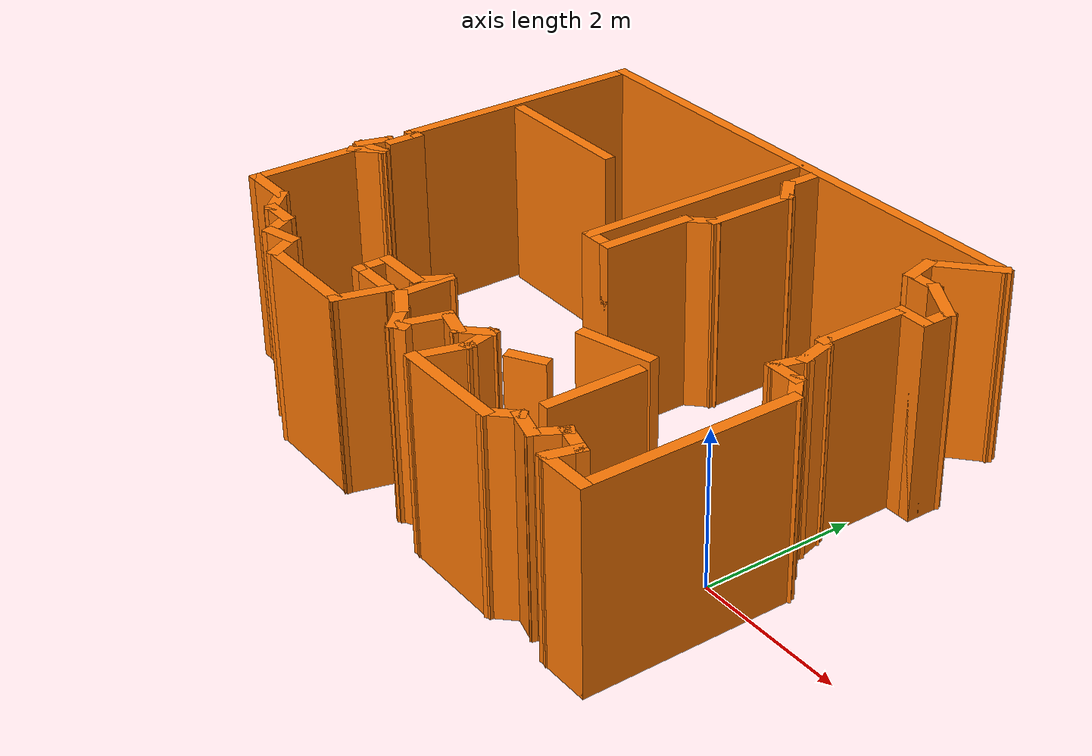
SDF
<?xml version='1.0'?>
<sdf version='1.6'>
  <model name='map_13'>
    <pose frame=''>-3.28804 1.04279 0 0 -0 0</pose>
    <link name='Wall_0'>
      <collision name='Wall_0_Collision'>
        <geometry>
          <box>
            <size>7.25 0.15 2.5</size>
          </box>
        </geometry>
        <pose frame=''>0 0 1.25 0 -0 0</pose>
      </collision>
      <visual name='Wall_0_Visual'>
        <pose frame=''>0 0 1.25 0 -0 0</pose>
        <geometry>
          <box>
            <size>7.25 0.15 2.5</size>
          </box>
        </geometry>
        <material>
          <script>
            <uri>file://media/materials/scripts/gazebo.material</uri>
            <name>Gazebo/Grey</name>
          </script>
          <ambient>0.996078 0.47451 0.0196078 1</ambient>
        </material>
        <meta>
          <layer>0</layer>
        </meta>
      </visual>
      <pose frame=''>-0.287135 3.15231 0 0 -0 3.14159</pose>
    </link>
    <link name='Wall_10'>
      <collision name='Wall_10_Collision'>
        <geometry>
          <box>
            <size>0.5 0.15 2.5</size>
          </box>
        </geometry>
        <pose frame=''>0 0 1.25 0 -0 0</pose>
      </collision>
      <visual name='Wall_10_Visual'>
        <pose frame=''>0 0 1.25 0 -0 0</pose>
        <geometry>
          <box>
            <size>0.5 0.15 2.5</size>
          </box>
        </geometry>
        <material>
          <script>
            <uri>file://media/materials/scripts/gazebo.material</uri>
            <name>Gazebo/Grey</name>
          </script>
          <ambient>0.996078 0.47451 0.0196078 1</ambient>
        </material>
        <meta>
          <layer>0</layer>
        </meta>
      </visual>
      <pose frame=''>-3.71339 -0.918919 0 0 -0 -2.35619</pose>
    </link>
    <link name='Wall_11'>
      <collision name='Wall_11_Collision'>
        <geometry>
          <box>
            <size>1.5 0.15 2.5</size>
          </box>
        </geometry>
        <pose frame=''>0 0 1.25 0 -0 0</pose>
      </collision>
      <visual name='Wall_11_Visual'>
        <pose frame=''>0 0 1.25 0 -0 0</pose>
        <geometry>
          <box>
            <size>1.5 0.15 2.5</size>
          </box>
        </geometry>
        <material>
          <script>
            <uri>file://media/materials/scripts/gazebo.material</uri>
            <name>Gazebo/Grey</name>
          </script>
          <ambient>0.996078 0.47451 0.0196078 1</ambient>
        </material>
        <meta>
          <layer>0</layer>
        </meta>
      </visual>
      <pose frame=''>-3.83713 -1.71766 0 0 -0 -1.5708</pose>
    </link>
    <link name='Wall_12'>
      <collision name='Wall_12_Collision'>
        <geometry>
          <box>
            <size>0.75 0.15 2.5</size>
          </box>
        </geometry>
        <pose frame=''>0 0 1.25 0 -0 0</pose>
      </collision>
      <visual name='Wall_12_Visual'>
        <pose frame=''>0 0 1.25 0 -0 0</pose>
        <geometry>
          <box>
            <size>0.75 0.15 2.5</size>
          </box>
        </geometry>
        <material>
          <script>
            <uri>file://media/materials/scripts/gazebo.material</uri>
            <name>Gazebo/Grey</name>
          </script>
          <ambient>0.996078 0.47451 0.0196078 1</ambient>
        </material>
        <meta>
          <layer>0</layer>
        </meta>
      </visual>
      <pose frame=''>-3.53714 -2.39266 0 0 -0 0</pose>
    </link>
    <link name='Wall_13'>
      <collision name='Wall_13_Collision'>
        <geometry>
          <box>
            <size>0.5 0.15 2.5</size>
          </box>
        </geometry>
        <pose frame=''>0 0 1.25 0 -0 0</pose>
      </collision>
      <visual name='Wall_13_Visual'>
        <pose frame=''>0 0 1.25 0 -0 0</pose>
        <geometry>
          <box>
            <size>0.5 0.15 2.5</size>
          </box>
        </geometry>
        <material>
          <script>
            <uri>file://media/materials/scripts/gazebo.material</uri>
            <name>Gazebo/Grey</name>
          </script>
          <ambient>0.996078 0.47451 0.0196078 1</ambient>
        </material>
        <meta>
          <layer>0</layer>
        </meta>
      </visual>
      <pose frame=''>-3.11339 -2.51641 0 0 -0 -0.785398</pose>
    </link>
    <link name='Wall_14'>
      <collision name='Wall_14_Collision'>
        <geometry>
          <box>
            <size>0.5 0.15 2.5</size>
          </box>
        </geometry>
        <pose frame=''>0 0 1.25 0 -0 0</pose>
      </collision>
      <visual name='Wall_14_Visual'>
        <pose frame=''>0 0 1.25 0 -0 0</pose>
        <geometry>
          <box>
            <size>0.5 0.15 2.5</size>
          </box>
        </geometry>
        <material>
          <script>
            <uri>file://media/materials/scripts/gazebo.material</uri>
            <name>Gazebo/Grey</name>
          </script>
          <ambient>0.996078 0.47451 0.0196078 1</ambient>
        </material>
        <meta>
          <layer>0</layer>
        </meta>
      </visual>
      <pose frame=''>-2.81465 -2.64015 0 0 -0 0</pose>
    </link>
    <link name='Wall_15'>
      <collision name='Wall_15_Collision'>
        <geometry>
          <box>
            <size>0.5 0.15 2.5</size>
          </box>
        </geometry>
        <pose frame=''>0 0 1.25 0 -0 0</pose>
      </collision>
      <visual name='Wall_15_Visual'>
        <pose frame=''>0 0 1.25 0 -0 0</pose>
        <geometry>
          <box>
            <size>0.5 0.15 2.5</size>
          </box>
        </geometry>
        <material>
          <script>
            <uri>file://media/materials/scripts/gazebo.material</uri>
            <name>Gazebo/Grey</name>
          </script>
          <ambient>0.996078 0.47451 0.0196078 1</ambient>
        </material>
        <meta>
          <layer>0</layer>
        </meta>
      </visual>
      <pose frame=''>-2.55215 -2.7917 0 0 -0 -1.0472</pose>
    </link>
    <link name='Wall_16'>
      <collision name='Wall_16_Collision'>
        <geometry>
          <box>
            <size>0.5 0.15 2.5</size>
          </box>
        </geometry>
        <pose frame=''>0 0 1.25 0 -0 0</pose>
      </collision>
      <visual name='Wall_16_Visual'>
        <pose frame=''>0 0 1.25 0 -0 0</pose>
        <geometry>
          <box>
            <size>0.5 0.15 2.5</size>
          </box>
        </geometry>
        <material>
          <script>
            <uri>file://media/materials/scripts/gazebo.material</uri>
            <name>Gazebo/Grey</name>
          </script>
          <ambient>0.996078 0.47451 0.0196078 1</ambient>
        </material>
        <meta>
          <layer>0</layer>
        </meta>
      </visual>
      <pose frame=''>-2.29561 -2.89797 0 0 -0 0.261799</pose>
    </link>
    <link name='Wall_19'>
      <collision name='Wall_19_Collision'>
        <geometry>
          <box>
            <size>0.5 0.15 2.5</size>
          </box>
        </geometry>
        <pose frame=''>0 0 1.25 0 -0 0</pose>
      </collision>
      <visual name='Wall_19_Visual'>
        <pose frame=''>0 0 1.25 0 -0 0</pose>
        <geometry>
          <box>
            <size>0.5 0.15 2.5</size>
          </box>
        </geometry>
        <material>
          <script>
            <uri>file://media/materials/scripts/gazebo.material</uri>
            <name>Gazebo/Grey</name>
          </script>
          <ambient>0.996078 0.47451 0.0196078 1</ambient>
        </material>
        <meta>
          <layer>0</layer>
        </meta>
      </visual>
      <pose frame=''>-2.03907 -3.00423 0 0 -0 -1.0472</pose>
    </link>
    <link name='Wall_20'>
      <collision name='Wall_20_Collision'>
        <geometry>
          <box>
            <size>1.5 0.15 2.5</size>
          </box>
        </geometry>
        <pose frame=''>0 0 1.25 0 -0 0</pose>
      </collision>
      <visual name='Wall_20_Visual'>
        <pose frame=''>0 0 1.25 0 -0 0</pose>
        <geometry>
          <box>
            <size>1.5 0.15 2.5</size>
          </box>
        </geometry>
        <material>
          <script>
            <uri>file://media/materials/scripts/gazebo.material</uri>
            <name>Gazebo/Grey</name>
          </script>
          <ambient>0.996078 0.47451 0.0196078 1</ambient>
        </material>
        <meta>
          <layer>0</layer>
        </meta>
      </visual>
      <pose frame=''>-1.27657 -3.15578 0 0 -0 0</pose>
    </link>
    <link name='Wall_21'>
      <collision name='Wall_21_Collision'>
        <geometry>
          <box>
            <size>0.75 0.15 2.5</size>
          </box>
        </geometry>
        <pose frame=''>0 0 1.25 0 -0 0</pose>
      </collision>
      <visual name='Wall_21_Visual'>
        <pose frame=''>0 0 1.25 0 -0 0</pose>
        <geometry>
          <box>
            <size>0.75 0.15 2.5</size>
          </box>
        </geometry>
        <material>
          <script>
            <uri>file://media/materials/scripts/gazebo.material</uri>
            <name>Gazebo/Grey</name>
          </script>
          <ambient>0.996078 0.47451 0.0196078 1</ambient>
        </material>
        <meta>
          <layer>0</layer>
        </meta>
      </visual>
      <pose frame=''>-0.523928 -2.866 0 0 -0 1.309</pose>
    </link>
    <link name='Wall_22'>
      <collision name='Wall_22_Collision'>
        <geometry>
          <box>
            <size>0.75 0.15 2.5</size>
          </box>
        </geometry>
        <pose frame=''>0 0 1.25 0 -0 0</pose>
      </collision>
      <visual name='Wall_22_Visual'>
        <pose frame=''>0 0 1.25 0 -0 0</pose>
        <geometry>
          <box>
            <size>0.75 0.15 2.5</size>
          </box>
        </geometry>
        <material>
          <script>
            <uri>file://media/materials/scripts/gazebo.material</uri>
            <name>Gazebo/Grey</name>
          </script>
          <ambient>0.996078 0.47451 0.0196078 1</ambient>
        </material>
        <meta>
          <layer>0</layer>
        </meta>
      </visual>
      <pose frame=''>-0.746282 -2.57623 0 0 -0 3.14159</pose>
    </link>
    <link name='Wall_23'>
      <collision name='Wall_23_Collision'>
        <geometry>
          <box>
            <size>0.5 0.15 2.5</size>
          </box>
        </geometry>
        <pose frame=''>0 0 1.25 0 -0 0</pose>
      </collision>
      <visual name='Wall_23_Visual'>
        <pose frame=''>0 0 1.25 0 -0 0</pose>
        <geometry>
          <box>
            <size>0.5 0.15 2.5</size>
          </box>
        </geometry>
        <material>
          <script>
            <uri>file://media/materials/scripts/gazebo.material</uri>
            <name>Gazebo/Grey</name>
          </script>
          <ambient>0.996078 0.47451 0.0196078 1</ambient>
        </material>
        <meta>
          <layer>0</layer>
        </meta>
      </visual>
      <pose frame=''>-1.04628 -2.40123 0 0 -0 1.5708</pose>
    </link>
    <link name='Wall_24'>
      <collision name='Wall_24_Collision'>
        <geometry>
          <box>
            <size>0.75 0.15 2.5</size>
          </box>
        </geometry>
        <pose frame=''>0 0 1.25 0 -0 0</pose>
      </collision>
      <visual name='Wall_24_Visual'>
        <pose frame=''>0 0 1.25 0 -0 0</pose>
        <geometry>
          <box>
            <size>0.75 0.15 2.5</size>
          </box>
        </geometry>
        <material>
          <script>
            <uri>file://media/materials/scripts/gazebo.material</uri>
            <name>Gazebo/Grey</name>
          </script>
          <ambient>0.996078 0.47451 0.0196078 1</ambient>
        </material>
        <meta>
          <layer>0</layer>
        </meta>
      </visual>
      <pose frame=''>-0.746282 -2.22623 0 0 -0 0</pose>
    </link>
    <link name='Wall_25'>
      <collision name='Wall_25_Collision'>
        <geometry>
          <box>
            <size>0.5 0.15 2.5</size>
          </box>
        </geometry>
        <pose frame=''>0 0 1.25 0 -0 0</pose>
      </collision>
      <visual name='Wall_25_Visual'>
        <pose frame=''>0 0 1.25 0 -0 0</pose>
        <geometry>
          <box>
            <size>0.5 0.15 2.5</size>
          </box>
        </geometry>
        <material>
          <script>
            <uri>file://media/materials/scripts/gazebo.material</uri>
            <name>Gazebo/Grey</name>
          </script>
          <ambient>0.996078 0.47451 0.0196078 1</ambient>
        </material>
        <meta>
          <layer>0</layer>
        </meta>
      </visual>
      <pose frame=''>-0.358782 -2.07467 0 0 -0 1.0472</pose>
    </link>
    <link name='Wall_26'>
      <collision name='Wall_26_Collision'>
        <geometry>
          <box>
            <size>0.75 0.15 2.5</size>
          </box>
        </geometry>
        <pose frame=''>0 0 1.25 0 -0 0</pose>
      </collision>
      <visual name='Wall_26_Visual'>
        <pose frame=''>0 0 1.25 0 -0 0</pose>
        <geometry>
          <box>
            <size>0.75 0.15 2.5</size>
          </box>
        </geometry>
        <material>
          <script>
            <uri>file://media/materials/scripts/gazebo.material</uri>
            <name>Gazebo/Grey</name>
          </script>
          <ambient>0.996078 0.47451 0.0196078 1</ambient>
        </material>
        <meta>
          <layer>0</layer>
        </meta>
      </visual>
      <pose frame=''>-0.271282 -2.22312 0 0 -0 -1.5708</pose>
    </link>
    <link name='Wall_27'>
      <collision name='Wall_27_Collision'>
        <geometry>
          <box>
            <size>0.5 0.15 2.5</size>
          </box>
        </geometry>
        <pose frame=''>0 0 1.25 0 -0 0</pose>
      </collision>
      <visual name='Wall_27_Visual'>
        <pose frame=''>0 0 1.25 0 -0 0</pose>
        <geometry>
          <box>
            <size>0.5 0.15 2.5</size>
          </box>
        </geometry>
        <material>
          <script>
            <uri>file://media/materials/scripts/gazebo.material</uri>
            <name>Gazebo/Grey</name>
          </script>
          <ambient>0.996078 0.47451 0.0196078 1</ambient>
        </material>
        <meta>
          <layer>0</layer>
        </meta>
      </visual>
      <pose frame=''>-0.119727 -2.61062 0 0 -0 -0.523599</pose>
    </link>
    <link name='Wall_28'>
      <collision name='Wall_28_Collision'>
        <geometry>
          <box>
            <size>0.5 0.15 2.5</size>
          </box>
        </geometry>
        <pose frame=''>0 0 1.25 0 -0 0</pose>
      </collision>
      <visual name='Wall_28_Visual'>
        <pose frame=''>0 0 1.25 0 -0 0</pose>
        <geometry>
          <box>
            <size>0.5 0.15 2.5</size>
          </box>
        </geometry>
        <material>
          <script>
            <uri>file://media/materials/scripts/gazebo.material</uri>
            <name>Gazebo/Grey</name>
          </script>
          <ambient>0.996078 0.47451 0.0196078 1</ambient>
        </material>
        <meta>
          <layer>0</layer>
        </meta>
      </visual>
      <pose frame=''>0.155571 -2.82186 0 0 -0 -0.785398</pose>
    </link>
    <link name='Wall_29'>
      <collision name='Wall_29_Collision'>
        <geometry>
          <box>
            <size>0.25 0.15 2.5</size>
          </box>
        </geometry>
        <pose frame=''>0 0 1.25 0 -0 0</pose>
      </collision>
      <visual name='Wall_29_Visual'>
        <pose frame=''>0 0 1.25 0 -0 0</pose>
        <geometry>
          <box>
            <size>0.25 0.15 2.5</size>
          </box>
        </geometry>
        <material>
          <script>
            <uri>file://media/materials/scripts/gazebo.material</uri>
            <name>Gazebo/Grey</name>
          </script>
          <ambient>0.996078 0.47451 0.0196078 1</ambient>
        </material>
        <meta>
          <layer>0</layer>
        </meta>
      </visual>
      <pose frame=''>0.322616 -2.9206 0 0 -0 0.523599</pose>
    </link>
    <link name='Wall_32'>
      <collision name='Wall_32_Collision'>
        <geometry>
          <box>
            <size>0.75 0.15 2.5</size>
          </box>
        </geometry>
        <pose frame=''>0 0 1.25 0 -0 0</pose>
      </collision>
      <visual name='Wall_32_Visual'>
        <pose frame=''>0 0 1.25 0 -0 0</pose>
        <geometry>
          <box>
            <size>0.75 0.15 2.5</size>
          </box>
        </geometry>
        <material>
          <script>
            <uri>file://media/materials/scripts/gazebo.material</uri>
            <name>Gazebo/Grey</name>
          </script>
          <ambient>0.996078 0.47451 0.0196078 1</ambient>
        </material>
        <meta>
          <layer>0</layer>
        </meta>
      </visual>
      <pose frame=''>0.35696 -2.65583 0 0 -0 1.309</pose>
    </link>
    <link name='Wall_35'>
      <collision name='Wall_35_Collision'>
        <geometry>
          <box>
            <size>0.5 0.15 2.5</size>
          </box>
        </geometry>
        <pose frame=''>0 0 1.25 0 -0 0</pose>
      </collision>
      <visual name='Wall_35_Visual'>
        <pose frame=''>0 0 1.25 0 -0 0</pose>
        <geometry>
          <box>
            <size>0.5 0.15 2.5</size>
          </box>
        </geometry>
        <material>
          <script>
            <uri>file://media/materials/scripts/gazebo.material</uri>
            <name>Gazebo/Grey</name>
          </script>
          <ambient>0.996078 0.47451 0.0196078 1</ambient>
        </material>
        <meta>
          <layer>0</layer>
        </meta>
      </visual>
      <pose frame=''>0.603643 -2.41134 0 0 -0 -0.261799</pose>
    </link>
    <link name='Wall_36'>
      <collision name='Wall_36_Collision'>
        <geometry>
          <box>
            <size>0.5 0.15 2.5</size>
          </box>
        </geometry>
        <pose frame=''>0 0 1.25 0 -0 0</pose>
      </collision>
      <visual name='Wall_36_Visual'>
        <pose frame=''>0 0 1.25 0 -0 0</pose>
        <geometry>
          <box>
            <size>0.5 0.15 2.5</size>
          </box>
        </geometry>
        <material>
          <script>
            <uri>file://media/materials/scripts/gazebo.material</uri>
            <name>Gazebo/Grey</name>
          </script>
          <ambient>0.996078 0.47451 0.0196078 1</ambient>
        </material>
        <meta>
          <layer>0</layer>
        </meta>
      </visual>
      <pose frame=''>0.896423 -2.33289 0 0 -0 0.785398</pose>
    </link>
    <link name='Wall_37'>
      <collision name='Wall_37_Collision'>
        <geometry>
          <box>
            <size>0.5 0.15 2.5</size>
          </box>
        </geometry>
        <pose frame=''>0 0 1.25 0 -0 0</pose>
      </collision>
      <visual name='Wall_37_Visual'>
        <pose frame=''>0 0 1.25 0 -0 0</pose>
        <geometry>
          <box>
            <size>0.5 0.15 2.5</size>
          </box>
        </geometry>
        <material>
          <script>
            <uri>file://media/materials/scripts/gazebo.material</uri>
            <name>Gazebo/Grey</name>
          </script>
          <ambient>0.996078 0.47451 0.0196078 1</ambient>
        </material>
        <meta>
          <layer>0</layer>
        </meta>
      </visual>
      <pose frame=''>1.06546 -2.37819 0 0 -0 -1.309</pose>
    </link>
    <link name='Wall_38'>
      <collision name='Wall_38_Collision'>
        <geometry>
          <box>
            <size>0.75 0.15 2.5</size>
          </box>
        </geometry>
        <pose frame=''>0 0 1.25 0 -0 0</pose>
      </collision>
      <visual name='Wall_38_Visual'>
        <pose frame=''>0 0 1.25 0 -0 0</pose>
        <geometry>
          <box>
            <size>0.75 0.15 2.5</size>
          </box>
        </geometry>
        <material>
          <script>
            <uri>file://media/materials/scripts/gazebo.material</uri>
            <name>Gazebo/Grey</name>
          </script>
          <ambient>0.996078 0.47451 0.0196078 1</ambient>
        </material>
        <meta>
          <layer>0</layer>
        </meta>
      </visual>
      <pose frame=''>1.03311 -2.837 0 0 -0 -1.8326</pose>
    </link>
    <link name='Wall_39'>
      <collision name='Wall_39_Collision'>
        <geometry>
          <box>
            <size>1.5 0.15 2.5</size>
          </box>
        </geometry>
        <pose frame=''>0 0 1.25 0 -0 0</pose>
      </collision>
      <visual name='Wall_39_Visual'>
        <pose frame=''>0 0 1.25 0 -0 0</pose>
        <geometry>
          <box>
            <size>1.5 0.15 2.5</size>
          </box>
        </geometry>
        <material>
          <script>
            <uri>file://media/materials/scripts/gazebo.material</uri>
            <name>Gazebo/Grey</name>
          </script>
          <ambient>0.996078 0.47451 0.0196078 1</ambient>
        </material>
        <meta>
          <layer>0</layer>
        </meta>
      </visual>
      <pose frame=''>1.63046 -3.12678 0 0 -0 0</pose>
    </link>
    <link name='Wall_4'>
      <collision name='Wall_4_Collision'>
        <geometry>
          <box>
            <size>3.5 0.15 2.5</size>
          </box>
        </geometry>
        <pose frame=''>0 0 1.25 0 -0 0</pose>
      </collision>
      <visual name='Wall_4_Visual'>
        <pose frame=''>0 0 1.25 0 -0 0</pose>
        <geometry>
          <box>
            <size>3.5 0.15 2.5</size>
          </box>
        </geometry>
        <material>
          <script>
            <uri>file://media/materials/scripts/gazebo.material</uri>
            <name>Gazebo/Grey</name>
          </script>
          <ambient>0.996078 0.47451 0.0196078 1</ambient>
        </material>
        <meta>
          <layer>0</layer>
        </meta>
      </visual>
      <pose frame=''>-3.83713 1.47731 0 0 -0 -1.5708</pose>
    </link>
    <link name='Wall_40'>
      <collision name='Wall_40_Collision'>
        <geometry>
          <box>
            <size>0.5 0.15 2.5</size>
          </box>
        </geometry>
        <pose frame=''>0 0 1.25 0 -0 0</pose>
      </collision>
      <visual name='Wall_40_Visual'>
        <pose frame=''>0 0 1.25 0 -0 0</pose>
        <geometry>
          <box>
            <size>0.5 0.15 2.5</size>
          </box>
        </geometry>
        <material>
          <script>
            <uri>file://media/materials/scripts/gazebo.material</uri>
            <name>Gazebo/Grey</name>
          </script>
          <ambient>0.996078 0.47451 0.0196078 1</ambient>
        </material>
        <meta>
          <layer>0</layer>
        </meta>
      </visual>
      <pose frame=''>2.42921 -3.00303 0 0 -0 0.785398</pose>
    </link>
    <link name='Wall_41'>
      <collision name='Wall_41_Collision'>
        <geometry>
          <box>
            <size>0.5 0.15 2.5</size>
          </box>
        </geometry>
        <pose frame=''>0 0 1.25 0 -0 0</pose>
      </collision>
      <visual name='Wall_41_Visual'>
        <pose frame=''>0 0 1.25 0 -0 0</pose>
        <geometry>
          <box>
            <size>0.5 0.15 2.5</size>
          </box>
        </geometry>
        <material>
          <script>
            <uri>file://media/materials/scripts/gazebo.material</uri>
            <name>Gazebo/Grey</name>
          </script>
          <ambient>0.996078 0.47451 0.0196078 1</ambient>
        </material>
        <meta>
          <layer>0</layer>
        </meta>
      </visual>
      <pose frame=''>2.72199 -2.92458 0 0 -0 -0.261799</pose>
    </link>
    <link name='Wall_42'>
      <collision name='Wall_42_Collision'>
        <geometry>
          <box>
            <size>0.5 0.15 2.5</size>
          </box>
        </geometry>
        <pose frame=''>0 0 1.25 0 -0 0</pose>
      </collision>
      <visual name='Wall_42_Visual'>
        <pose frame=''>0 0 1.25 0 -0 0</pose>
        <geometry>
          <box>
            <size>0.5 0.15 2.5</size>
          </box>
        </geometry>
        <material>
          <script>
            <uri>file://media/materials/scripts/gazebo.material</uri>
            <name>Gazebo/Grey</name>
          </script>
          <ambient>0.996078 0.47451 0.0196078 1</ambient>
        </material>
        <meta>
          <layer>0</layer>
        </meta>
      </visual>
      <pose frame=''>2.97852 -2.81832 0 0 -0 1.0472</pose>
    </link>
    <link name='Wall_43'>
      <collision name='Wall_43_Collision'>
        <geometry>
          <box>
            <size>0.5 0.15 2.5</size>
          </box>
        </geometry>
        <pose frame=''>0 0 1.25 0 -0 0</pose>
      </collision>
      <visual name='Wall_43_Visual'>
        <pose frame=''>0 0 1.25 0 -0 0</pose>
        <geometry>
          <box>
            <size>0.5 0.15 2.5</size>
          </box>
        </geometry>
        <material>
          <script>
            <uri>file://media/materials/scripts/gazebo.material</uri>
            <name>Gazebo/Grey</name>
          </script>
          <ambient>0.996078 0.47451 0.0196078 1</ambient>
        </material>
        <meta>
          <layer>0</layer>
        </meta>
      </visual>
      <pose frame=''>3.23506 -2.71206 0 0 -0 -0.261799</pose>
    </link>
    <link name='Wall_44'>
      <collision name='Wall_44_Collision'>
        <geometry>
          <box>
            <size>0.5 0.15 2.5</size>
          </box>
        </geometry>
        <pose frame=''>0 0 1.25 0 -0 0</pose>
      </collision>
      <visual name='Wall_44_Visual'>
        <pose frame=''>0 0 1.25 0 -0 0</pose>
        <geometry>
          <box>
            <size>0.5 0.15 2.5</size>
          </box>
        </geometry>
        <material>
          <script>
            <uri>file://media/materials/scripts/gazebo.material</uri>
            <name>Gazebo/Grey</name>
          </script>
          <ambient>0.996078 0.47451 0.0196078 1</ambient>
        </material>
        <meta>
          <layer>0</layer>
        </meta>
      </visual>
      <pose frame=''>3.3588 -2.92639 0 0 -0 -1.8326</pose>
    </link>
    <link name='Wall_45'>
      <collision name='Wall_45_Collision'>
        <geometry>
          <box>
            <size>0.75 0.15 2.5</size>
          </box>
        </geometry>
        <pose frame=''>0 0 1.25 0 -0 0</pose>
      </collision>
      <visual name='Wall_45_Visual'>
        <pose frame=''>0 0 1.25 0 -0 0</pose>
        <geometry>
          <box>
            <size>0.75 0.15 2.5</size>
          </box>
        </geometry>
        <material>
          <script>
            <uri>file://media/materials/scripts/gazebo.material</uri>
            <name>Gazebo/Grey</name>
          </script>
          <ambient>0.996078 0.47451 0.0196078 1</ambient>
        </material>
        <meta>
          <layer>0</layer>
        </meta>
      </visual>
      <pose frame=''>3.61351 -3.09543 0 0 -0 0</pose>
    </link>
    <link name='Wall_46'>
      <collision name='Wall_46_Collision'>
        <geometry>
          <box>
            <size>2.75 0.15 2.5</size>
          </box>
        </geometry>
        <pose frame=''>0 0 1.25 0 -0 0</pose>
      </collision>
      <visual name='Wall_46_Visual'>
        <pose frame=''>0 0 1.25 0 -0 0</pose>
        <geometry>
          <box>
            <size>2.75 0.15 2.5</size>
          </box>
        </geometry>
        <material>
          <script>
            <uri>file://media/materials/scripts/gazebo.material</uri>
            <name>Gazebo/Grey</name>
          </script>
          <ambient>0.996078 0.47451 0.0196078 1</ambient>
        </material>
        <meta>
          <layer>0</layer>
        </meta>
      </visual>
      <pose frame=''>3.91351 -1.79543 0 0 -0 1.5708</pose>
    </link>
    <link name='Wall_47'>
      <collision name='Wall_47_Collision'>
        <geometry>
          <box>
            <size>0.5 0.15 2.5</size>
          </box>
        </geometry>
        <pose frame=''>0 0 1.25 0 -0 0</pose>
      </collision>
      <visual name='Wall_47_Visual'>
        <pose frame=''>0 0 1.25 0 -0 0</pose>
        <geometry>
          <box>
            <size>0.5 0.15 2.5</size>
          </box>
        </geometry>
        <material>
          <script>
            <uri>file://media/materials/scripts/gazebo.material</uri>
            <name>Gazebo/Grey</name>
          </script>
          <ambient>0.996078 0.47451 0.0196078 1</ambient>
        </material>
        <meta>
          <layer>0</layer>
        </meta>
      </visual>
      <pose frame=''>3.78977 -0.371685 0 0 -0 2.35619</pose>
    </link>
    <link name='Wall_48'>
      <collision name='Wall_48_Collision'>
        <geometry>
          <box>
            <size>0.5 0.15 2.5</size>
          </box>
        </geometry>
        <pose frame=''>0 0 1.25 0 -0 0</pose>
      </collision>
      <visual name='Wall_48_Visual'>
        <pose frame=''>0 0 1.25 0 -0 0</pose>
        <geometry>
          <box>
            <size>0.5 0.15 2.5</size>
          </box>
        </geometry>
        <material>
          <script>
            <uri>file://media/materials/scripts/gazebo.material</uri>
            <name>Gazebo/Grey</name>
          </script>
          <ambient>0.996078 0.47451 0.0196078 1</ambient>
        </material>
        <meta>
          <layer>0</layer>
        </meta>
      </visual>
      <pose frame=''>3.49102 -0.247941 0 0 -0 3.14159</pose>
    </link>
    <link name='Wall_49'>
      <collision name='Wall_49_Collision'>
        <geometry>
          <box>
            <size>0.5 0.15 2.5</size>
          </box>
        </geometry>
        <pose frame=''>0 0 1.25 0 -0 0</pose>
      </collision>
      <visual name='Wall_49_Visual'>
        <pose frame=''>0 0 1.25 0 -0 0</pose>
        <geometry>
          <box>
            <size>0.5 0.15 2.5</size>
          </box>
        </geometry>
        <material>
          <script>
            <uri>file://media/materials/scripts/gazebo.material</uri>
            <name>Gazebo/Grey</name>
          </script>
          <ambient>0.996078 0.47451 0.0196078 1</ambient>
        </material>
        <meta>
          <layer>0</layer>
        </meta>
      </visual>
      <pose frame=''>3.36132 -0.078904 0 0 -0 1.309</pose>
    </link>
    <link name='Wall_5'>
      <collision name='Wall_5_Collision'>
        <geometry>
          <box>
            <size>0.25 0.15 2.5</size>
          </box>
        </geometry>
        <pose frame=''>0 0 1.25 0 -0 0</pose>
      </collision>
      <visual name='Wall_5_Visual'>
        <pose frame=''>0 0 1.25 0 -0 0</pose>
        <geometry>
          <box>
            <size>0.25 0.15 2.5</size>
          </box>
        </geometry>
        <material>
          <script>
            <uri>file://media/materials/scripts/gazebo.material</uri>
            <name>Gazebo/Grey</name>
          </script>
          <ambient>0.996078 0.47451 0.0196078 1</ambient>
        </material>
        <meta>
          <layer>0</layer>
        </meta>
      </visual>
      <pose frame=''>-3.78714 -0.197688 0 0 -0 0</pose>
    </link>
    <link name='Wall_50'>
      <collision name='Wall_50_Collision'>
        <geometry>
          <box>
            <size>0.5 0.15 2.5</size>
          </box>
        </geometry>
        <pose frame=''>0 0 1.25 0 -0 0</pose>
      </collision>
      <visual name='Wall_50_Visual'>
        <pose frame=''>0 0 1.25 0 -0 0</pose>
        <geometry>
          <box>
            <size>0.5 0.15 2.5</size>
          </box>
        </geometry>
        <material>
          <script>
            <uri>file://media/materials/scripts/gazebo.material</uri>
            <name>Gazebo/Grey</name>
          </script>
          <ambient>0.996078 0.47451 0.0196078 1</ambient>
        </material>
        <meta>
          <layer>0</layer>
        </meta>
      </visual>
      <pose frame=''>3.36132 0.25917 0 0 -0 1.8326</pose>
    </link>
    <link name='Wall_51'>
      <collision name='Wall_51_Collision'>
        <geometry>
          <box>
            <size>0.25 0.15 2.5</size>
          </box>
        </geometry>
        <pose frame=''>0 0 1.25 0 -0 0</pose>
      </collision>
      <visual name='Wall_51_Visual'>
        <pose frame=''>0 0 1.25 0 -0 0</pose>
        <geometry>
          <box>
            <size>0.25 0.15 2.5</size>
          </box>
        </geometry>
        <material>
          <script>
            <uri>file://media/materials/scripts/gazebo.material</uri>
            <name>Gazebo/Grey</name>
          </script>
          <ambient>0.996078 0.47451 0.0196078 1</ambient>
        </material>
        <meta>
          <layer>0</layer>
        </meta>
      </visual>
      <pose frame=''>3.28067 0.463562 0 0 -0 2.35619</pose>
    </link>
    <link name='Wall_52'>
      <collision name='Wall_52_Collision'>
        <geometry>
          <box>
            <size>1.25 0.15 2.5</size>
          </box>
        </geometry>
        <pose frame=''>0 0 1.25 0 -0 0</pose>
      </collision>
      <visual name='Wall_52_Visual'>
        <pose frame=''>0 0 1.25 0 -0 0</pose>
        <geometry>
          <box>
            <size>1.25 0.15 2.5</size>
          </box>
        </geometry>
        <material>
          <script>
            <uri>file://media/materials/scripts/gazebo.material</uri>
            <name>Gazebo/Grey</name>
          </script>
          <ambient>0.996078 0.47451 0.0196078 1</ambient>
        </material>
        <meta>
          <layer>0</layer>
        </meta>
      </visual>
      <pose frame=''>3.24531 1.04892 0 0 -0 1.5708</pose>
    </link>
    <link name='Wall_53'>
      <collision name='Wall_53_Collision'>
        <geometry>
          <box>
            <size>0.5 0.15 2.5</size>
          </box>
        </geometry>
        <pose frame=''>0 0 1.25 0 -0 0</pose>
      </collision>
      <visual name='Wall_53_Visual'>
        <pose frame=''>0 0 1.25 0 -0 0</pose>
        <geometry>
          <box>
            <size>0.5 0.15 2.5</size>
          </box>
        </geometry>
        <material>
          <script>
            <uri>file://media/materials/scripts/gazebo.material</uri>
            <name>Gazebo/Grey</name>
          </script>
          <ambient>0.996078 0.47451 0.0196078 1</ambient>
        </material>
        <meta>
          <layer>0</layer>
        </meta>
      </visual>
      <pose frame=''>3.42031 1.59892 0 0 -0 0</pose>
    </link>
    <link name='Wall_54'>
      <collision name='Wall_54_Collision'>
        <geometry>
          <box>
            <size>0.5 0.15 2.5</size>
          </box>
        </geometry>
        <pose frame=''>0 0 1.25 0 -0 0</pose>
      </collision>
      <visual name='Wall_54_Visual'>
        <pose frame=''>0 0 1.25 0 -0 0</pose>
        <geometry>
          <box>
            <size>0.5 0.15 2.5</size>
          </box>
        </geometry>
        <material>
          <script>
            <uri>file://media/materials/scripts/gazebo.material</uri>
            <name>Gazebo/Grey</name>
          </script>
          <ambient>0.996078 0.47451 0.0196078 1</ambient>
        </material>
        <meta>
          <layer>0</layer>
        </meta>
      </visual>
      <pose frame=''>3.59531 1.77392 0 0 -0 1.5708</pose>
    </link>
    <link name='Wall_55'>
      <collision name='Wall_55_Collision'>
        <geometry>
          <box>
            <size>0.75 0.15 2.5</size>
          </box>
        </geometry>
        <pose frame=''>0 0 1.25 0 -0 0</pose>
      </collision>
      <visual name='Wall_55_Visual'>
        <pose frame=''>0 0 1.25 0 -0 0</pose>
        <geometry>
          <box>
            <size>0.75 0.15 2.5</size>
          </box>
        </geometry>
        <material>
          <script>
            <uri>file://media/materials/scripts/gazebo.material</uri>
            <name>Gazebo/Grey</name>
          </script>
          <ambient>0.996078 0.47451 0.0196078 1</ambient>
        </material>
        <meta>
          <layer>0</layer>
        </meta>
      </visual>
      <pose frame=''>3.33551 2.09892 0 0 -0 2.61799</pose>
    </link>
    <link name='Wall_56'>
      <collision name='Wall_56_Collision'>
        <geometry>
          <box>
            <size>0.5 0.15 2.5</size>
          </box>
        </geometry>
        <pose frame=''>0 0 1.25 0 -0 0</pose>
      </collision>
      <visual name='Wall_56_Visual'>
        <pose frame=''>0 0 1.25 0 -0 0</pose>
        <geometry>
          <box>
            <size>0.5 0.15 2.5</size>
          </box>
        </geometry>
        <material>
          <script>
            <uri>file://media/materials/scripts/gazebo.material</uri>
            <name>Gazebo/Grey</name>
          </script>
          <ambient>0.996078 0.47451 0.0196078 1</ambient>
        </material>
        <meta>
          <layer>0</layer>
        </meta>
      </visual>
      <pose frame=''>2.9007 2.24892 0 0 -0 3.14159</pose>
    </link>
    <link name='Wall_57'>
      <collision name='Wall_57_Collision'>
        <geometry>
          <box>
            <size>0.5 0.15 2.5</size>
          </box>
        </geometry>
        <pose frame=''>0 0 1.25 0 -0 0</pose>
      </collision>
      <visual name='Wall_57_Visual'>
        <pose frame=''>0 0 1.25 0 -0 0</pose>
        <geometry>
          <box>
            <size>0.5 0.15 2.5</size>
          </box>
        </geometry>
        <material>
          <script>
            <uri>file://media/materials/scripts/gazebo.material</uri>
            <name>Gazebo/Grey</name>
          </script>
          <ambient>0.996078 0.47451 0.0196078 1</ambient>
        </material>
        <meta>
          <layer>0</layer>
        </meta>
      </visual>
      <pose frame=''>2.6804 2.41795 0 0 -0 1.8326</pose>
    </link>
    <link name='Wall_58'>
      <collision name='Wall_58_Collision'>
        <geometry>
          <box>
            <size>0.994785 0.15 2.5</size>
          </box>
        </geometry>
        <pose frame=''>0 0 1.25 0 -0 0</pose>
      </collision>
      <visual name='Wall_58_Visual'>
        <pose frame=''>0 0 1.25 0 -0 0</pose>
        <geometry>
          <box>
            <size>0.994785 0.15 2.5</size>
          </box>
        </geometry>
        <material>
          <script>
            <uri>file://media/materials/scripts/gazebo.material</uri>
            <name>Gazebo/Grey</name>
          </script>
          <ambient>0.996078 0.47451 0.0196078 1</ambient>
        </material>
        <meta>
          <layer>0</layer>
        </meta>
      </visual>
      <pose frame=''>2.94899 2.86965 0 0 -0 0.733116</pose>
    </link>
    <link name='Wall_6'>
      <collision name='Wall_6_Collision'>
        <geometry>
          <box>
            <size>0.5 0.15 2.5</size>
          </box>
        </geometry>
        <pose frame=''>0 0 1.25 0 -0 0</pose>
      </collision>
      <visual name='Wall_6_Visual'>
        <pose frame=''>0 0 1.25 0 -0 0</pose>
        <geometry>
          <box>
            <size>0.5 0.15 2.5</size>
          </box>
        </geometry>
        <material>
          <script>
            <uri>file://media/materials/scripts/gazebo.material</uri>
            <name>Gazebo/Grey</name>
          </script>
          <ambient>0.996078 0.47451 0.0196078 1</ambient>
        </material>
        <meta>
          <layer>0</layer>
        </meta>
      </visual>
      <pose frame=''>-3.73713 -0.372688 0 0 -0 -1.5708</pose>
    </link>
    <link name='Wall_60'>
      <collision name='Wall_60_Collision'>
        <geometry>
          <box>
            <size>2 0.15 2.5</size>
          </box>
        </geometry>
        <pose frame=''>0 0 1.25 0 -0 0</pose>
      </collision>
      <visual name='Wall_60_Visual'>
        <pose frame=''>0 0 1.25 0 -0 0</pose>
        <geometry>
          <box>
            <size>2 0.15 2.5</size>
          </box>
        </geometry>
        <material>
          <script>
            <uri>file://media/materials/scripts/gazebo.material</uri>
            <name>Gazebo/Grey</name>
          </script>
          <ambient>0.996078 0.47451 0.0196078 1</ambient>
        </material>
        <meta>
          <layer>0</layer>
        </meta>
      </visual>
      <pose frame=''>-2.71109 1.3622 0 0 -0 0</pose>
    </link>
    <link name='Wall_62'>
      <collision name='Wall_62_Collision'>
        <geometry>
          <box>
            <size>1 0.15 2.5</size>
          </box>
        </geometry>
        <pose frame=''>0 0 1.25 0 -0 0</pose>
      </collision>
      <visual name='Wall_62_Visual'>
        <pose frame=''>0 0 1.25 0 -0 0</pose>
        <geometry>
          <box>
            <size>1 0.15 2.5</size>
          </box>
        </geometry>
        <material>
          <script>
            <uri>file://media/materials/scripts/gazebo.material</uri>
            <name>Gazebo/Grey</name>
          </script>
          <ambient>0.996078 0.47451 0.0196078 1</ambient>
        </material>
        <meta>
          <layer>0</layer>
        </meta>
      </visual>
      <pose frame=''>2.02407 -1.30347 0 0 -0 0.261799</pose>
    </link>
    <link name='Wall_64'>
      <collision name='Wall_64_Collision'>
        <geometry>
          <box>
            <size>0.5 0.15 2.5</size>
          </box>
        </geometry>
        <pose frame=''>0 0 1.25 0 -0 0</pose>
      </collision>
      <visual name='Wall_64_Visual'>
        <pose frame=''>0 0 1.25 0 -0 0</pose>
        <geometry>
          <box>
            <size>0.5 0.15 2.5</size>
          </box>
        </geometry>
        <material>
          <script>
            <uri>file://media/materials/scripts/gazebo.material</uri>
            <name>Gazebo/Grey</name>
          </script>
          <ambient>0.996078 0.47451 0.0196078 1</ambient>
        </material>
        <meta>
          <layer>0</layer>
        </meta>
      </visual>
      <pose frame=''>1.68465 -2.19085 0 0 -0 0.523599</pose>
    </link>
    <link name='Wall_66'>
      <collision name='Wall_66_Collision'>
        <geometry>
          <box>
            <size>1.25 0.15 2.5</size>
          </box>
        </geometry>
        <pose frame=''>0 0 1.25 0 -0 0</pose>
      </collision>
      <visual name='Wall_66_Visual'>
        <pose frame=''>0 0 1.25 0 -0 0</pose>
        <geometry>
          <box>
            <size>1.25 0.15 2.5</size>
          </box>
        </geometry>
        <material>
          <script>
            <uri>file://media/materials/scripts/gazebo.material</uri>
            <name>Gazebo/Grey</name>
          </script>
          <ambient>0.996078 0.47451 0.0196078 1</ambient>
        </material>
        <meta>
          <layer>0</layer>
        </meta>
      </visual>
      <pose frame=''>2.55889 -1.98358 0 0 -0 -1.5708</pose>
    </link>
    <link name='Wall_68'>
      <collision name='Wall_68_Collision'>
        <geometry>
          <box>
            <size>3.25 0.15 2.5</size>
          </box>
        </geometry>
        <pose frame=''>0 0 1.25 0 -0 0</pose>
      </collision>
      <visual name='Wall_68_Visual'>
        <pose frame=''>0 0 1.25 0 -0 0</pose>
        <geometry>
          <box>
            <size>3.25 0.15 2.5</size>
          </box>
        </geometry>
        <material>
          <script>
            <uri>file://media/materials/scripts/gazebo.material</uri>
            <name>Gazebo/Grey</name>
          </script>
          <ambient>0.996078 0.47451 0.0196078 1</ambient>
        </material>
        <meta>
          <layer>0</layer>
        </meta>
      </visual>
      <pose frame=''>-0.196669 1.52186 0 0 -0 -1.5708</pose>
    </link>
    <link name='Wall_69'>
      <collision name='Wall_69_Collision'>
        <geometry>
          <box>
            <size>0.5 0.15 2.5</size>
          </box>
        </geometry>
        <pose frame=''>0 0 1.25 0 -0 0</pose>
      </collision>
      <visual name='Wall_69_Visual'>
        <pose frame=''>0 0 1.25 0 -0 0</pose>
        <geometry>
          <box>
            <size>0.5 0.15 2.5</size>
          </box>
        </geometry>
        <material>
          <script>
            <uri>file://media/materials/scripts/gazebo.material</uri>
            <name>Gazebo/Grey</name>
          </script>
          <ambient>0.996078 0.47451 0.0196078 1</ambient>
        </material>
        <meta>
          <layer>0</layer>
        </meta>
      </visual>
      <pose frame=''>-0.021669 -0.028142 0 0 -0 0</pose>
    </link>
    <link name='Wall_7'>
      <collision name='Wall_7_Collision'>
        <geometry>
          <box>
            <size>0.25 0.15 2.5</size>
          </box>
        </geometry>
        <pose frame=''>0 0 1.25 0 -0 0</pose>
      </collision>
      <visual name='Wall_7_Visual'>
        <pose frame=''>0 0 1.25 0 -0 0</pose>
        <geometry>
          <box>
            <size>0.25 0.15 2.5</size>
          </box>
        </geometry>
        <material>
          <script>
            <uri>file://media/materials/scripts/gazebo.material</uri>
            <name>Gazebo/Grey</name>
          </script>
          <ambient>0.996078 0.47451 0.0196078 1</ambient>
        </material>
        <meta>
          <layer>0</layer>
        </meta>
      </visual>
      <pose frame=''>-3.78714 -0.547688 0 0 -0 3.14159</pose>
    </link>
    <link name='Wall_70'>
      <collision name='Wall_70_Collision'>
        <geometry>
          <box>
            <size>1.25 0.15 2.5</size>
          </box>
        </geometry>
        <pose frame=''>0 0 1.25 0 -0 0</pose>
      </collision>
      <visual name='Wall_70_Visual'>
        <pose frame=''>0 0 1.25 0 -0 0</pose>
        <geometry>
          <box>
            <size>1.25 0.15 2.5</size>
          </box>
        </geometry>
        <material>
          <script>
            <uri>file://media/materials/scripts/gazebo.material</uri>
            <name>Gazebo/Grey</name>
          </script>
          <ambient>0.996078 0.47451 0.0196078 1</ambient>
        </material>
        <meta>
          <layer>0</layer>
        </meta>
      </visual>
      <pose frame=''>0.153331 0.521858 0 0 -0 1.5708</pose>
    </link>
    <link name='Wall_71'>
      <collision name='Wall_71_Collision'>
        <geometry>
          <box>
            <size>0.5 0.15 2.5</size>
          </box>
        </geometry>
        <pose frame=''>0 0 1.25 0 -0 0</pose>
      </collision>
      <visual name='Wall_71_Visual'>
        <pose frame=''>0 0 1.25 0 -0 0</pose>
        <geometry>
          <box>
            <size>0.5 0.15 2.5</size>
          </box>
        </geometry>
        <material>
          <script>
            <uri>file://media/materials/scripts/gazebo.material</uri>
            <name>Gazebo/Grey</name>
          </script>
          <ambient>0.996078 0.47451 0.0196078 1</ambient>
        </material>
        <meta>
          <layer>0</layer>
        </meta>
      </visual>
      <pose frame=''>0.277075 1.1956 0 0 -0 0.785398</pose>
    </link>
    <link name='Wall_72'>
      <collision name='Wall_72_Collision'>
        <geometry>
          <box>
            <size>1.25 0.15 2.5</size>
          </box>
        </geometry>
        <pose frame=''>0 0 1.25 0 -0 0</pose>
      </collision>
      <visual name='Wall_72_Visual'>
        <pose frame=''>0 0 1.25 0 -0 0</pose>
        <geometry>
          <box>
            <size>1.25 0.15 2.5</size>
          </box>
        </geometry>
        <material>
          <script>
            <uri>file://media/materials/scripts/gazebo.material</uri>
            <name>Gazebo/Grey</name>
          </script>
          <ambient>0.996078 0.47451 0.0196078 1</ambient>
        </material>
        <meta>
          <layer>0</layer>
        </meta>
      </visual>
      <pose frame=''>0.400818 1.86935 0 0 -0 1.5708</pose>
    </link>
    <link name='Wall_73'>
      <collision name='Wall_73_Collision'>
        <geometry>
          <box>
            <size>0.5 0.15 2.5</size>
          </box>
        </geometry>
        <pose frame=''>0 0 1.25 0 -0 0</pose>
      </collision>
      <visual name='Wall_73_Visual'>
        <pose frame=''>0 0 1.25 0 -0 0</pose>
        <geometry>
          <box>
            <size>0.5 0.15 2.5</size>
          </box>
        </geometry>
        <material>
          <script>
            <uri>file://media/materials/scripts/gazebo.material</uri>
            <name>Gazebo/Grey</name>
          </script>
          <ambient>0.996078 0.47451 0.0196078 1</ambient>
        </material>
        <meta>
          <layer>0</layer>
        </meta>
      </visual>
      <pose frame=''>0.277075 2.54309 0 0 -0 2.35619</pose>
    </link>
    <link name='Wall_74'>
      <collision name='Wall_74_Collision'>
        <geometry>
          <box>
            <size>0.5 0.15 2.5</size>
          </box>
        </geometry>
        <pose frame=''>0 0 1.25 0 -0 0</pose>
      </collision>
      <visual name='Wall_74_Visual'>
        <pose frame=''>0 0 1.25 0 -0 0</pose>
        <geometry>
          <box>
            <size>0.5 0.15 2.5</size>
          </box>
        </geometry>
        <material>
          <script>
            <uri>file://media/materials/scripts/gazebo.material</uri>
            <name>Gazebo/Grey</name>
          </script>
          <ambient>0.996078 0.47451 0.0196078 1</ambient>
        </material>
        <meta>
          <layer>0</layer>
        </meta>
      </visual>
      <pose frame=''>0.153331 2.84183 0 0 -0 1.5708</pose>
    </link>
    <link name='Wall_8'>
      <collision name='Wall_8_Collision'>
        <geometry>
          <box>
            <size>0.5 0.15 2.5</size>
          </box>
        </geometry>
        <pose frame=''>0 0 1.25 0 -0 0</pose>
      </collision>
      <visual name='Wall_8_Visual'>
        <pose frame=''>0 0 1.25 0 -0 0</pose>
        <geometry>
          <box>
            <size>0.5 0.15 2.5</size>
          </box>
        </geometry>
        <material>
          <script>
            <uri>file://media/materials/scripts/gazebo.material</uri>
            <name>Gazebo/Grey</name>
          </script>
          <ambient>0.996078 0.47451 0.0196078 1</ambient>
        </material>
        <meta>
          <layer>0</layer>
        </meta>
      </visual>
      <pose frame=''>-3.88243 -0.716725 0 0 -0 -1.8326</pose>
    </link>
    <link name='Wall_9'>
      <collision name='Wall_9_Collision'>
        <geometry>
          <box>
            <size>0.5 0.15 2.5</size>
          </box>
        </geometry>
        <pose frame=''>0 0 1.25 0 -0 0</pose>
      </collision>
      <visual name='Wall_9_Visual'>
        <pose frame=''>0 0 1.25 0 -0 0</pose>
        <geometry>
          <box>
            <size>0.5 0.15 2.5</size>
          </box>
        </geometry>
        <material>
          <script>
            <uri>file://media/materials/scripts/gazebo.material</uri>
            <name>Gazebo/Grey</name>
          </script>
          <ambient>0.996078 0.47451 0.0196078 1</ambient>
        </material>
        <meta>
          <layer>0</layer>
        </meta>
      </visual>
      <pose frame=''>-3.75868 -0.840469 0 0 -0 0.261799</pose>
    </link>
    <static>1</static>
  </model>
</sdf>
